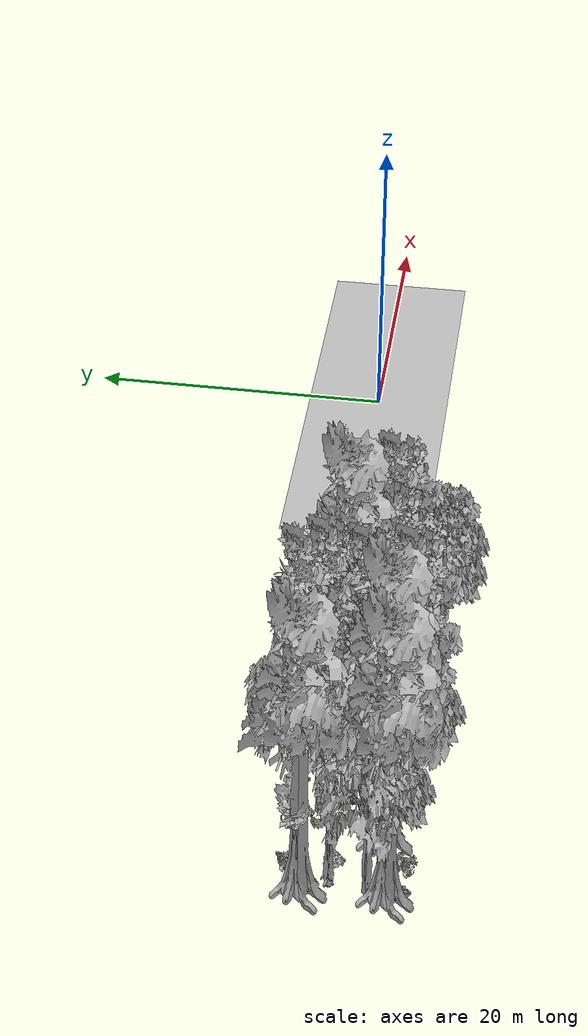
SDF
<sdf version="1.7">
 <world name="default">
  <model name="ground_plane">
   <static>1</static>
   <link name="link">
    <collision name="collision">
     <geometry><plane><normal>0 0 1</normal><size>100 100</size></plane></geometry>
     <surface><contact><ode><min_depth>0.01</min_depth><max_vel>0</max_vel></ode></contact></surface>
    </collision>
    <visual name="grass">
     <cast_shadows>0</cast_shadows>
     <geometry>
      <mesh>
       <scale>0.5814285714285714 0.18142857142857144 0.1</scale>
       <uri>file://grass_plane/meshes/grass_plane.dae</uri>
      </mesh>
     </geometry>
    </visual>
   </link>
  </model>
  <model name="Tree 19">
   <static>1</static>
   <pose>-40.874871581768886 -3.1254078904174634 0 1.57079 -0 0</pose>
   <link name="link">
    <collision name="collision">
     <geometry><mesh><scale>3.5 5 3.5</scale><uri>model://tree_2/meshes/tree_2.obj</uri></mesh></geometry>
    </collision>
    <visual name="visual">
     <geometry><mesh><scale>3.5 5 3.5</scale><uri>model://tree_2/meshes/tree_2.obj</uri></mesh></geometry>
    </visual>
   </link>
  </model>
  <model name="Tree 67">
   <static>1</static>
   <pose>-48.17666535615385 -0.9248226733032343 0 1.57079 -0 0</pose>
   <link name="link">
    <collision name="collision">
     <geometry><mesh><scale>3.5 5 3.5</scale><uri>model://tree_4/meshes/tree_4.obj</uri></mesh></geometry>
    </collision>
    <visual name="visual">
     <geometry><mesh><scale>3.5 5 3.5</scale><uri>model://tree_4/meshes/tree_4.obj</uri></mesh></geometry>
    </visual>
   </link>
  </model>
  <model name="Tree 73">
   <static>1</static>
   <pose>-27.369547778514733 -4.179896533761079 0 1.57079 -0 0</pose>
   <link name="link">
    <collision name="collision">
     <geometry><mesh><scale>3.5 5 3.5</scale><uri>model://tree_9/meshes/tree_9.obj</uri></mesh></geometry>
    </collision>
    <visual name="visual">
     <geometry><mesh><scale>3.5 5 3.5</scale><uri>model://tree_9/meshes/tree_9.obj</uri></mesh></geometry>
    </visual>
   </link>
  </model>
  <model name="Tree 79">
   <static>1</static>
   <pose>-28.674092515466587 -5.98136622701257 0 1.57079 -0 0</pose>
   <link name="link">
    <collision name="collision">
     <geometry><mesh><scale>3.5 5 3.5</scale><uri>model://tree_2/meshes/tree_2.obj</uri></mesh></geometry>
    </collision>
    <visual name="visual">
     <geometry><mesh><scale>3.5 5 3.5</scale><uri>model://tree_2/meshes/tree_2.obj</uri></mesh></geometry>
    </visual>
   </link>
  </model>
  <model name="Tree 106">
   <static>1</static>
   <pose>-31.801678333216273 -3.8383991739332313 0 1.57079 -0 0</pose>
   <link name="link">
    <collision name="collision">
     <geometry><mesh><scale>3.5 5 3.5</scale><uri>model://tree_9/meshes/tree_9.obj</uri></mesh></geometry>
    </collision>
    <visual name="visual">
     <geometry><mesh><scale>3.5 5 3.5</scale><uri>model://tree_9/meshes/tree_9.obj</uri></mesh></geometry>
    </visual>
   </link>
  </model>
  <model name="Tree 108">
   <static>1</static>
   <pose>-36.308053690576045 -3.444425906903403 0 1.57079 -0 0</pose>
   <link name="link">
    <collision name="collision">
     <geometry><mesh><scale>3.5 5 3.5</scale><uri>model://tree_9/meshes/tree_9.obj</uri></mesh></geometry>
    </collision>
    <visual name="visual">
     <geometry><mesh><scale>3.5 5 3.5</scale><uri>model://tree_9/meshes/tree_9.obj</uri></mesh></geometry>
    </visual>
   </link>
  </model>
  <model name="Tree 165">
   <static>1</static>
   <pose>-41.874519410314925 -1.2644283397790872 0 1.57079 -0 0</pose>
   <link name="link">
    <collision name="collision">
     <geometry><mesh><scale>3.5 5 3.5</scale><uri>model://tree_2/meshes/tree_2.obj</uri></mesh></geometry>
    </collision>
    <visual name="visual">
     <geometry><mesh><scale>3.5 5 3.5</scale><uri>model://tree_2/meshes/tree_2.obj</uri></mesh></geometry>
    </visual>
   </link>
  </model>
  <model name="Tree 189">
   <static>1</static>
   <pose>-35.95383300117027 -1.1264063165508418 0 1.57079 -0 0</pose>
   <link name="link">
    <collision name="collision">
     <geometry><mesh><scale>3.5 5 3.5</scale><uri>model://tree_9/meshes/tree_9.obj</uri></mesh></geometry>
    </collision>
    <visual name="visual">
     <geometry><mesh><scale>3.5 5 3.5</scale><uri>model://tree_9/meshes/tree_9.obj</uri></mesh></geometry>
    </visual>
   </link>
  </model>
  <model name="Tree 191">
   <static>1</static>
   <pose>-40.351338422569114 -6.345506058843727 0 1.57079 -0 0</pose>
   <link name="link">
    <collision name="collision">
     <geometry><mesh><scale>3.5 5 3.5</scale><uri>model://tree_9/meshes/tree_9.obj</uri></mesh></geometry>
    </collision>
    <visual name="visual">
     <geometry><mesh><scale>3.5 5 3.5</scale><uri>model://tree_9/meshes/tree_9.obj</uri></mesh></geometry>
    </visual>
   </link>
  </model>
  <model name="Tree 204">
   <static>1</static>
   <pose>-47.87576669202044 -4.678890661327612 0 1.57079 -0 0</pose>
   <link name="link">
    <collision name="collision">
     <geometry><mesh><scale>3.5 5 3.5</scale><uri>model://tree_2/meshes/tree_2.obj</uri></mesh></geometry>
    </collision>
    <visual name="visual">
     <geometry><mesh><scale>3.5 5 3.5</scale><uri>model://tree_2/meshes/tree_2.obj</uri></mesh></geometry>
    </visual>
   </link>
  </model>
  <model name="Tree 205">
   <static>1</static>
   <pose>-36.03026769276029 -6.09410007958272 0 1.57079 -0 0</pose>
   <link name="link">
    <collision name="collision">
     <geometry><mesh><scale>3.5 5 3.5</scale><uri>model://tree_9/meshes/tree_9.obj</uri></mesh></geometry>
    </collision>
    <visual name="visual">
     <geometry><mesh><scale>3.5 5 3.5</scale><uri>model://tree_9/meshes/tree_9.obj</uri></mesh></geometry>
    </visual>
   </link>
  </model>
  <model name="Tree 234">
   <static>1</static>
   <pose>-32.26832873347858 -2.773286268320966 0 1.57079 -0 0</pose>
   <link name="link">
    <collision name="collision">
     <geometry><mesh><scale>3.5 5 3.5</scale><uri>model://tree_2/meshes/tree_2.obj</uri></mesh></geometry>
    </collision>
    <visual name="visual">
     <geometry><mesh><scale>3.5 5 3.5</scale><uri>model://tree_2/meshes/tree_2.obj</uri></mesh></geometry>
    </visual>
   </link>
  </model>
  <model name="Tree 255">
   <static>1</static>
   <pose>-43.78057192998933 -5.2969337048454825 0 1.57079 -0 0</pose>
   <link name="link">
    <collision name="collision">
     <geometry><mesh><scale>3.5 5 3.5</scale><uri>model://tree_4/meshes/tree_4.obj</uri></mesh></geometry>
    </collision>
    <visual name="visual">
     <geometry><mesh><scale>3.5 5 3.5</scale><uri>model://tree_4/meshes/tree_4.obj</uri></mesh></geometry>
    </visual>
   </link>
  </model>
  <model name="Tree 282">
   <static>1</static>
   <pose>-46.73123047259806 -2.4233057503615587 0 1.57079 -0 0</pose>
   <link name="link">
    <collision name="collision">
     <geometry><mesh><scale>3.5 5 3.5</scale><uri>model://tree_9/meshes/tree_9.obj</uri></mesh></geometry>
    </collision>
    <visual name="visual">
     <geometry><mesh><scale>3.5 5 3.5</scale><uri>model://tree_9/meshes/tree_9.obj</uri></mesh></geometry>
    </visual>
   </link>
  </model>
  <model name="Tree 288">
   <static>1</static>
   <pose>-41.264286498309964 -5.760541169507734 0 1.57079 -0 0</pose>
   <link name="link">
    <collision name="collision">
     <geometry><mesh><scale>3.5 5 3.5</scale><uri>model://tree_2/meshes/tree_2.obj</uri></mesh></geometry>
    </collision>
    <visual name="visual">
     <geometry><mesh><scale>3.5 5 3.5</scale><uri>model://tree_2/meshes/tree_2.obj</uri></mesh></geometry>
    </visual>
   </link>
  </model>
  <model name="Tree 291">
   <static>1</static>
   <pose>-36.80047976112041 -0.8003166125691372 0 1.57079 -0 0</pose>
   <link name="link">
    <collision name="collision">
     <geometry><mesh><scale>3.5 5 3.5</scale><uri>model://tree_2/meshes/tree_2.obj</uri></mesh></geometry>
    </collision>
    <visual name="visual">
     <geometry><mesh><scale>3.5 5 3.5</scale><uri>model://tree_2/meshes/tree_2.obj</uri></mesh></geometry>
    </visual>
   </link>
  </model>
  <model name="Tree 327">
   <static>1</static>
   <pose>-36.96743277984435 0.14430604301988126 0 1.57079 -0 0</pose>
   <link name="link">
    <collision name="collision">
     <geometry><mesh><scale>3.5 5 3.5</scale><uri>model://tree_9/meshes/tree_9.obj</uri></mesh></geometry>
    </collision>
    <visual name="visual">
     <geometry><mesh><scale>3.5 5 3.5</scale><uri>model://tree_9/meshes/tree_9.obj</uri></mesh></geometry>
    </visual>
   </link>
  </model>
  <model name="Tree 360">
   <static>1</static>
   <pose>-48.125624007501216 -5.788458236047463 0 1.57079 -0 0</pose>
   <link name="link">
    <collision name="collision">
     <geometry><mesh><scale>3.5 5 3.5</scale><uri>model://tree_4/meshes/tree_4.obj</uri></mesh></geometry>
    </collision>
    <visual name="visual">
     <geometry><mesh><scale>3.5 5 3.5</scale><uri>model://tree_4/meshes/tree_4.obj</uri></mesh></geometry>
    </visual>
   </link>
  </model>
  <model name="Tree 373">
   <static>1</static>
   <pose>-39.220740685978704 -3.044330493506923 0 1.57079 -0 0</pose>
   <link name="link">
    <collision name="collision">
     <geometry><mesh><scale>3.5 5 3.5</scale><uri>model://tree_2/meshes/tree_2.obj</uri></mesh></geometry>
    </collision>
    <visual name="visual">
     <geometry><mesh><scale>3.5 5 3.5</scale><uri>model://tree_2/meshes/tree_2.obj</uri></mesh></geometry>
    </visual>
   </link>
  </model>
  <model name="Tree 391">
   <static>1</static>
   <pose>-34.29447798898515 -1.9448728952263092 0 1.57079 -0 0</pose>
   <link name="link">
    <collision name="collision">
     <geometry><mesh><scale>3.5 5 3.5</scale><uri>model://tree_4/meshes/tree_4.obj</uri></mesh></geometry>
    </collision>
    <visual name="visual">
     <geometry><mesh><scale>3.5 5 3.5</scale><uri>model://tree_4/meshes/tree_4.obj</uri></mesh></geometry>
    </visual>
   </link>
  </model>
  <model name="Tree 407">
   <static>1</static>
   <pose>-32.16000104934348 -4.342450441523939 0 1.57079 -0 0</pose>
   <link name="link">
    <collision name="collision">
     <geometry><mesh><scale>3.5 5 3.5</scale><uri>model://tree_9/meshes/tree_9.obj</uri></mesh></geometry>
    </collision>
    <visual name="visual">
     <geometry><mesh><scale>3.5 5 3.5</scale><uri>model://tree_9/meshes/tree_9.obj</uri></mesh></geometry>
    </visual>
   </link>
  </model>
  <model name="Tree 418">
   <static>1</static>
   <pose>-26.946699062506656 -5.029884641867449 0 1.57079 -0 0</pose>
   <link name="link">
    <collision name="collision">
     <geometry><mesh><scale>3.5 5 3.5</scale><uri>model://tree_2/meshes/tree_2.obj</uri></mesh></geometry>
    </collision>
    <visual name="visual">
     <geometry><mesh><scale>3.5 5 3.5</scale><uri>model://tree_2/meshes/tree_2.obj</uri></mesh></geometry>
    </visual>
   </link>
  </model>
  <model name="Tree 424">
   <static>1</static>
   <pose>-25.857759494838685 -5.9024394111984435 0 1.57079 -0 0</pose>
   <link name="link">
    <collision name="collision">
     <geometry><mesh><scale>3.5 5 3.5</scale><uri>model://tree_2/meshes/tree_2.obj</uri></mesh></geometry>
    </collision>
    <visual name="visual">
     <geometry><mesh><scale>3.5 5 3.5</scale><uri>model://tree_2/meshes/tree_2.obj</uri></mesh></geometry>
    </visual>
   </link>
  </model>
  <model name="Tree 438">
   <static>1</static>
   <pose>-41.71155524475655 -0.06534541128375437 0 1.57079 -0 0</pose>
   <link name="link">
    <collision name="collision">
     <geometry><mesh><scale>3.5 5 3.5</scale><uri>model://tree_2/meshes/tree_2.obj</uri></mesh></geometry>
    </collision>
    <visual name="visual">
     <geometry><mesh><scale>3.5 5 3.5</scale><uri>model://tree_2/meshes/tree_2.obj</uri></mesh></geometry>
    </visual>
   </link>
  </model>
  <model name="Bush 1">
   <static>1</static>
   <pose>-45.87051880889977 -2.5970941543091595 0 1.57079 -0 0</pose>
   <link name="link">
    <collision name="collision">
     <geometry><mesh><scale>2 2 2</scale><uri>model://bush_3/meshes/bush_3.obj</uri></mesh></geometry>
     <surface><contact><collide_without_contact>false</collide_without_contact></contact></surface>
    </collision>
    <visual name="visual">
     <geometry><mesh><scale>2 2 2</scale><uri>model://bush_3/meshes/bush_3.obj</uri></mesh></geometry>
    </visual>
   </link>
  </model>
  <model name="Bush 7">
   <static>1</static>
   <pose>-41.71483936203543 -4.883242145087829 0 1.57079 -0 0</pose>
   <link name="link">
    <collision name="collision">
     <geometry><mesh><scale>2 2 2</scale><uri>model://bush_4/meshes/bush_4.obj</uri></mesh></geometry>
     <surface><contact><collide_without_contact>false</collide_without_contact></contact></surface>
    </collision>
    <visual name="visual">
     <geometry><mesh><scale>2 2 2</scale><uri>model://bush_4/meshes/bush_4.obj</uri></mesh></geometry>
    </visual>
   </link>
  </model>
  <model name="Bush 13">
   <static>1</static>
   <pose>-46.10659818842666 -6.872567100533935 0 1.57079 -0 0</pose>
   <link name="link">
    <collision name="collision">
     <geometry><mesh><scale>2 2 2</scale><uri>model://bush_4/meshes/bush_4.obj</uri></mesh></geometry>
     <surface><contact><collide_without_contact>false</collide_without_contact></contact></surface>
    </collision>
    <visual name="visual">
     <geometry><mesh><scale>2 2 2</scale><uri>model://bush_4/meshes/bush_4.obj</uri></mesh></geometry>
    </visual>
   </link>
  </model>
  <model name="Bush 18">
   <static>1</static>
   <pose>-47.650891144651645 -6.66055332362356 0 1.57079 -0 0</pose>
   <link name="link">
    <collision name="collision">
     <geometry><mesh><scale>2 2 2</scale><uri>model://bush_2/meshes/bush_2.obj</uri></mesh></geometry>
     <surface><contact><collide_without_contact>false</collide_without_contact></contact></surface>
    </collision>
    <visual name="visual">
     <geometry><mesh><scale>2 2 2</scale><uri>model://bush_2/meshes/bush_2.obj</uri></mesh></geometry>
    </visual>
   </link>
  </model>
  <model name="Bush 23">
   <static>1</static>
   <pose>-46.67516567351825 0.014066637732433662 0 1.57079 -0 0</pose>
   <link name="link">
    <collision name="collision">
     <geometry><mesh><scale>2 2 2</scale><uri>model://bush_4/meshes/bush_4.obj</uri></mesh></geometry>
     <surface><contact><collide_without_contact>false</collide_without_contact></contact></surface>
    </collision>
    <visual name="visual">
     <geometry><mesh><scale>2 2 2</scale><uri>model://bush_4/meshes/bush_4.obj</uri></mesh></geometry>
    </visual>
   </link>
  </model>
  <model name="Bush 38">
   <static>1</static>
   <pose>-31.408265742322108 -3.527030918565959 0 1.57079 -0 0</pose>
   <link name="link">
    <collision name="collision">
     <geometry><mesh><scale>2 2 2</scale><uri>model://bush_0/meshes/bush_0.obj</uri></mesh></geometry>
     <surface><contact><collide_without_contact>false</collide_without_contact></contact></surface>
    </collision>
    <visual name="visual">
     <geometry><mesh><scale>2 2 2</scale><uri>model://bush_0/meshes/bush_0.obj</uri></mesh></geometry>
    </visual>
   </link>
  </model>
  <model name="Bush 74">
   <static>1</static>
   <pose>-32.19157397602372 -6.4400869390832725 0 1.57079 -0 0</pose>
   <link name="link">
    <collision name="collision">
     <geometry><mesh><scale>2 2 2</scale><uri>model://bush_3/meshes/bush_3.obj</uri></mesh></geometry>
     <surface><contact><collide_without_contact>false</collide_without_contact></contact></surface>
    </collision>
    <visual name="visual">
     <geometry><mesh><scale>2 2 2</scale><uri>model://bush_3/meshes/bush_3.obj</uri></mesh></geometry>
    </visual>
   </link>
  </model>
  <model name="Bush 78">
   <static>1</static>
   <pose>-39.4728937881635 0.10474450776999333 0 1.57079 -0 0</pose>
   <link name="link">
    <collision name="collision">
     <geometry><mesh><scale>2 2 2</scale><uri>model://bush_2/meshes/bush_2.obj</uri></mesh></geometry>
     <surface><contact><collide_without_contact>false</collide_without_contact></contact></surface>
    </collision>
    <visual name="visual">
     <geometry><mesh><scale>2 2 2</scale><uri>model://bush_2/meshes/bush_2.obj</uri></mesh></geometry>
    </visual>
   </link>
  </model>
  <model name="Bush 86">
   <static>1</static>
   <pose>-26.38446052169332 0.0888896793319951 0 1.57079 -0 0</pose>
   <link name="link">
    <collision name="collision">
     <geometry><mesh><scale>2 2 2</scale><uri>model://bush_3/meshes/bush_3.obj</uri></mesh></geometry>
     <surface><contact><collide_without_contact>false</collide_without_contact></contact></surface>
    </collision>
    <visual name="visual">
     <geometry><mesh><scale>2 2 2</scale><uri>model://bush_3/meshes/bush_3.obj</uri></mesh></geometry>
    </visual>
   </link>
  </model>
  <model name="Bush 93">
   <static>1</static>
   <pose>-42.30016342500959 -0.36110533981571713 0 1.57079 -0 0</pose>
   <link name="link">
    <collision name="collision">
     <geometry><mesh><scale>2 2 2</scale><uri>model://bush_3/meshes/bush_3.obj</uri></mesh></geometry>
     <surface><contact><collide_without_contact>false</collide_without_contact></contact></surface>
    </collision>
    <visual name="visual">
     <geometry><mesh><scale>2 2 2</scale><uri>model://bush_3/meshes/bush_3.obj</uri></mesh></geometry>
    </visual>
   </link>
  </model>
  <model name="Bush 109">
   <static>1</static>
   <pose>-30.25892998670447 -1.4236891377272691 0 1.57079 -0 0</pose>
   <link name="link">
    <collision name="collision">
     <geometry><mesh><scale>2 2 2</scale><uri>model://bush_2/meshes/bush_2.obj</uri></mesh></geometry>
     <surface><contact><collide_without_contact>false</collide_without_contact></contact></surface>
    </collision>
    <visual name="visual">
     <geometry><mesh><scale>2 2 2</scale><uri>model://bush_2/meshes/bush_2.obj</uri></mesh></geometry>
    </visual>
   </link>
  </model>
  <model name="Bush 135">
   <static>1</static>
   <pose>-35.91385442830399 -3.94418597911873 0 1.57079 -0 0</pose>
   <link name="link">
    <collision name="collision">
     <geometry><mesh><scale>2 2 2</scale><uri>model://bush_0/meshes/bush_0.obj</uri></mesh></geometry>
     <surface><contact><collide_without_contact>false</collide_without_contact></contact></surface>
    </collision>
    <visual name="visual">
     <geometry><mesh><scale>2 2 2</scale><uri>model://bush_0/meshes/bush_0.obj</uri></mesh></geometry>
    </visual>
   </link>
  </model>
  <model name="Bush 154">
   <static>1</static>
   <pose>-36.26067594815997 -2.3244942825651442 0 1.57079 -0 0</pose>
   <link name="link">
    <collision name="collision">
     <geometry><mesh><scale>2 2 2</scale><uri>model://bush_3/meshes/bush_3.obj</uri></mesh></geometry>
     <surface><contact><collide_without_contact>false</collide_without_contact></contact></surface>
    </collision>
    <visual name="visual">
     <geometry><mesh><scale>2 2 2</scale><uri>model://bush_3/meshes/bush_3.obj</uri></mesh></geometry>
    </visual>
   </link>
  </model>
  <model name="Bush 158">
   <static>1</static>
   <pose>-35.456161657728344 -4.733370966300397 0 1.57079 -0 0</pose>
   <link name="link">
    <collision name="collision">
     <geometry><mesh><scale>2 2 2</scale><uri>model://bush_5/meshes/bush_5.obj</uri></mesh></geometry>
     <surface><contact><collide_without_contact>false</collide_without_contact></contact></surface>
    </collision>
    <visual name="visual">
     <geometry><mesh><scale>2 2 2</scale><uri>model://bush_5/meshes/bush_5.obj</uri></mesh></geometry>
    </visual>
   </link>
  </model>
  <model name="Bush 165">
   <static>1</static>
   <pose>-26.046218757094454 -6.349136322310807 0 1.57079 -0 0</pose>
   <link name="link">
    <collision name="collision">
     <geometry><mesh><scale>2 2 2</scale><uri>model://bush_0/meshes/bush_0.obj</uri></mesh></geometry>
     <surface><contact><collide_without_contact>false</collide_without_contact></contact></surface>
    </collision>
    <visual name="visual">
     <geometry><mesh><scale>2 2 2</scale><uri>model://bush_0/meshes/bush_0.obj</uri></mesh></geometry>
    </visual>
   </link>
  </model>
  <model name="Bush 176">
   <static>1</static>
   <pose>-26.568236965061818 -2.2347973777188397 0 1.57079 -0 0</pose>
   <link name="link">
    <collision name="collision">
     <geometry><mesh><scale>2 2 2</scale><uri>model://bush_1/meshes/bush_1.obj</uri></mesh></geometry>
     <surface><contact><collide_without_contact>false</collide_without_contact></contact></surface>
    </collision>
    <visual name="visual">
     <geometry><mesh><scale>2 2 2</scale><uri>model://bush_1/meshes/bush_1.obj</uri></mesh></geometry>
    </visual>
   </link>
  </model>
  <model name="Bush 180">
   <static>1</static>
   <pose>-45.86648724661026 -6.190389889872366 0 1.57079 -0 0</pose>
   <link name="link">
    <collision name="collision">
     <geometry><mesh><scale>2 2 2</scale><uri>model://bush_4/meshes/bush_4.obj</uri></mesh></geometry>
     <surface><contact><collide_without_contact>false</collide_without_contact></contact></surface>
    </collision>
    <visual name="visual">
     <geometry><mesh><scale>2 2 2</scale><uri>model://bush_4/meshes/bush_4.obj</uri></mesh></geometry>
    </visual>
   </link>
  </model>
  <model name="Bush 198">
   <static>1</static>
   <pose>-33.79558185801004 -5.267496657546129 0 1.57079 -0 0</pose>
   <link name="link">
    <collision name="collision">
     <geometry><mesh><scale>2 2 2</scale><uri>model://bush_5/meshes/bush_5.obj</uri></mesh></geometry>
     <surface><contact><collide_without_contact>false</collide_without_contact></contact></surface>
    </collision>
    <visual name="visual">
     <geometry><mesh><scale>2 2 2</scale><uri>model://bush_5/meshes/bush_5.obj</uri></mesh></geometry>
    </visual>
   </link>
  </model>
  <model name="Bush 210">
   <static>1</static>
   <pose>-42.228265112059916 0.2525491697903739 0 1.57079 -0 0</pose>
   <link name="link">
    <collision name="collision">
     <geometry><mesh><scale>2 2 2</scale><uri>model://bush_2/meshes/bush_2.obj</uri></mesh></geometry>
     <surface><contact><collide_without_contact>false</collide_without_contact></contact></surface>
    </collision>
    <visual name="visual">
     <geometry><mesh><scale>2 2 2</scale><uri>model://bush_2/meshes/bush_2.obj</uri></mesh></geometry>
    </visual>
   </link>
  </model>
  <model name="Bush 308">
   <static>1</static>
   <pose>-34.48310544578747 -7.084534964531226 0 1.57079 -0 0</pose>
   <link name="link">
    <collision name="collision">
     <geometry><mesh><scale>2 2 2</scale><uri>model://bush_4/meshes/bush_4.obj</uri></mesh></geometry>
     <surface><contact><collide_without_contact>false</collide_without_contact></contact></surface>
    </collision>
    <visual name="visual">
     <geometry><mesh><scale>2 2 2</scale><uri>model://bush_4/meshes/bush_4.obj</uri></mesh></geometry>
    </visual>
   </link>
  </model>
 </world>
</sdf>
